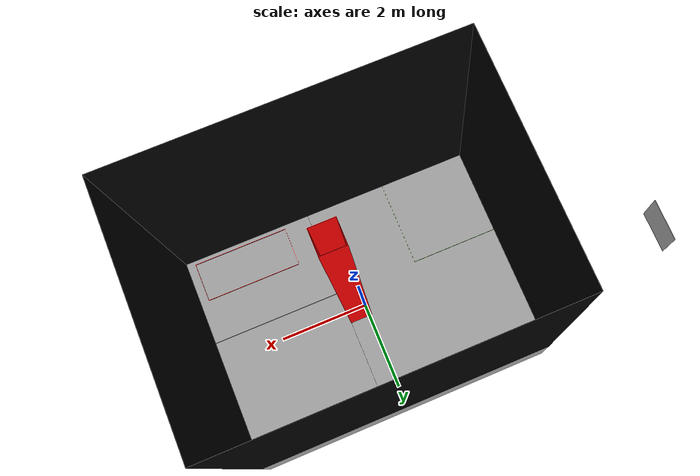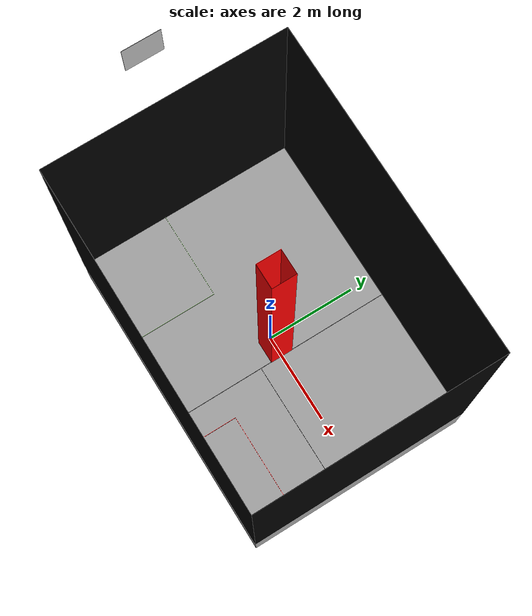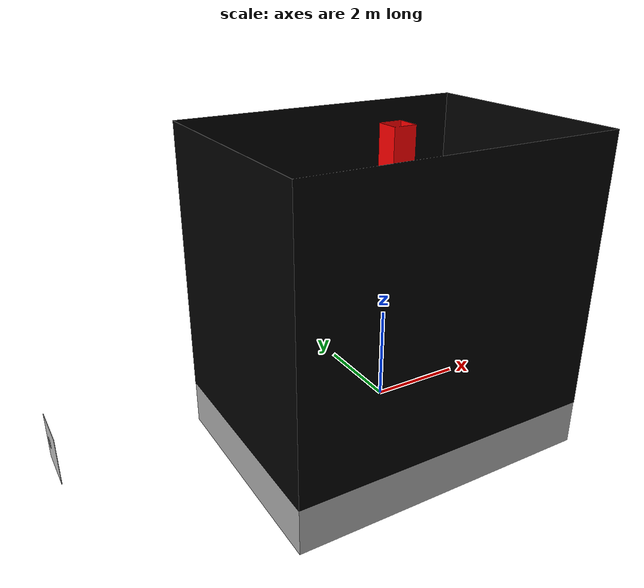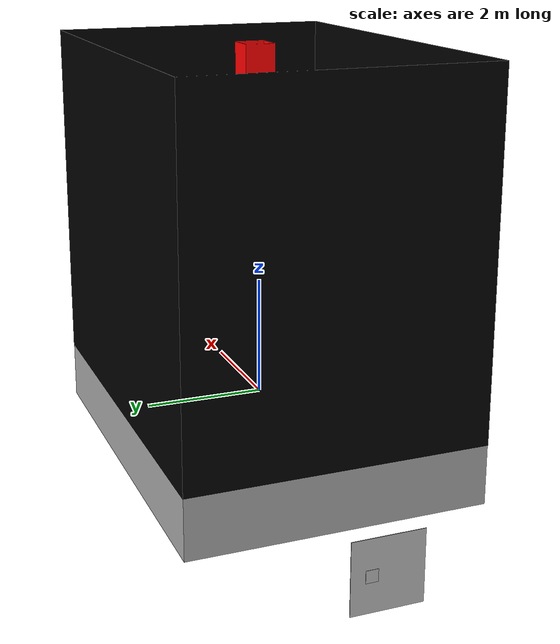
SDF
<?xml version="1.0" ?>
<sdf version='1.7'>
  <model name='NASA_field'>
    <static>true</static>
    <pose>0 0 0 0 0 0</pose>
      <link name='field'>
        <collision name="collision">
          <geometry>
            <mesh>
              <uri>meshes/NASA_basic.stl</uri>
            </mesh>
          </geometry>
          <pose>0 0 0 0 0 0</pose>
        </collision>
        <visual name="visual">
          <geometry>
            <mesh>
              <uri>meshes/NASA_field.dae</uri>
            </mesh>
          </geometry>
          <pose>0 0 0 0 0 0</pose>
        </visual>
      </link>

      <!-- orientation like rule book, bottom field. plus x, plus y from bottom right-->

      <frame name="bottom_right">
        <pose>3.44 -2.5 0 0 0 0</pose>
      </frame>

      <!-- Tags in the starting zone. This assumes that we are placing 2 tags on the wall. -->
      <include>
        <uri>/src/gazebo/ros_gz_description/models/Apriltag36_11_00001</uri>
        <pose relative_to='bottom_right'>-6.87 1 0.4 1.57 0 1.57</pose>
        <name>AprilTag_1</name>
      </include>

      <include>
        <uri>/src/gazebo/ros_gz_description/models/Apriltag36_11_00002</uri>
        <pose relative_to='bottom_right'>-6.87 1.2159 0.4 1.57 0 1.57</pose>
        <name>AprilTag_2</name>
      </include>

  </model>
</sdf>

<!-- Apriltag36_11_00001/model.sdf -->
<sdf version='1.6'>
  <model name='Apriltag36_11_00001'>
    <link name='main'>
    <pose frame=''>0 0 0 0 0 0</pose>
      <visual name='main_Visual'>
        <geometry>
          <mesh>
            <uri>materials/meshes/apriltag.dae</uri>
          </mesh>
        </geometry>
      </visual>
     </link>
    <static>1</static>
  </model>
</sdf>

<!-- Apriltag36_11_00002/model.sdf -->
<sdf version='1.6'>
  <model name='Apriltag36_11_00002'>
    <link name='main'>
    <pose frame=''>0 0 0 0 0 0</pose>
      <visual name='main_Visual'>
        <geometry>
          <box>
          <size>0.17 0.17 0.01</size>
          </box>
        </geometry>
           <material>
          <script>
            <uri>model://Apriltag36_11_00002/materials/scripts</uri>
            <uri>model://Apriltag36_11_00002/materials/textures</uri>
            <name>Apriltag36_11_00002</name>
          </script>
        </material>
      </visual>
     </link>
    <static>1</static>
  </model>
</sdf>
